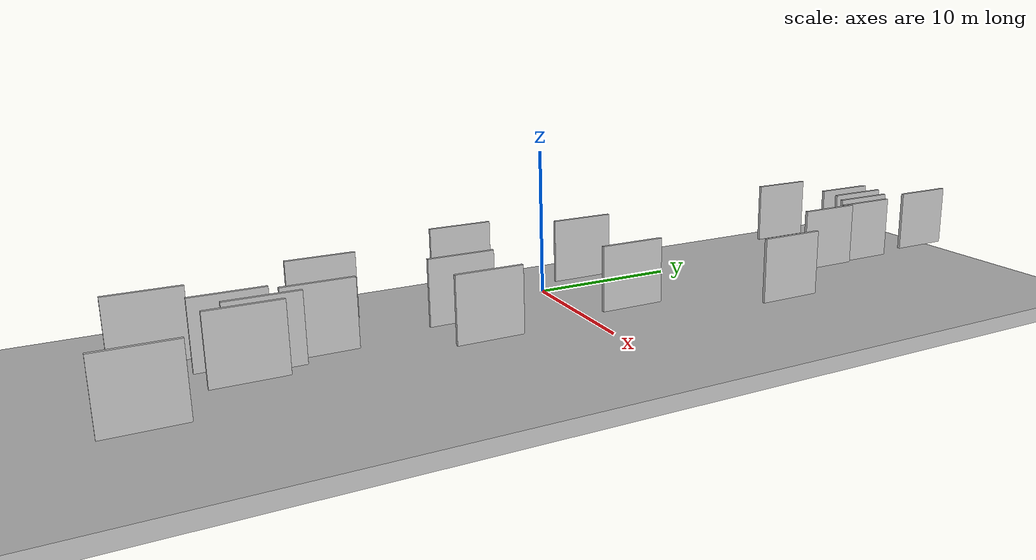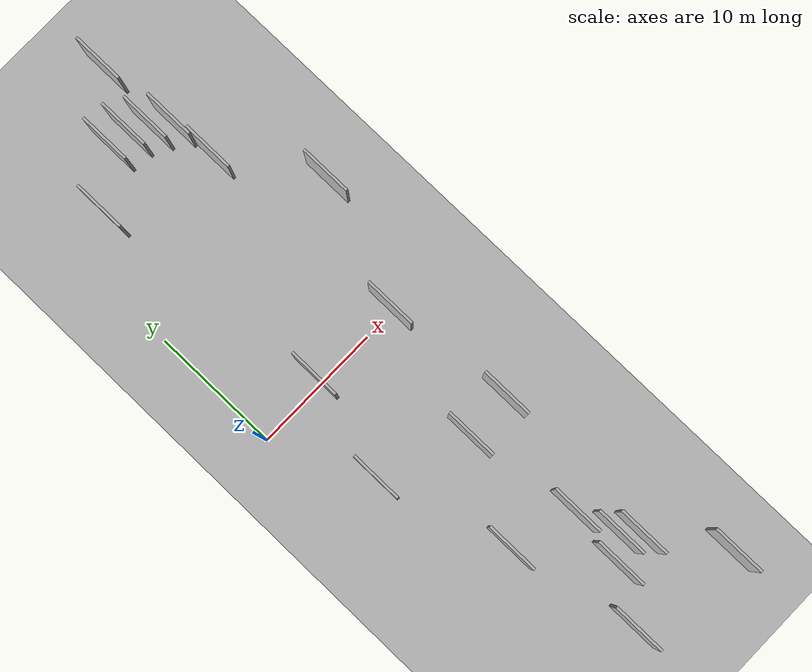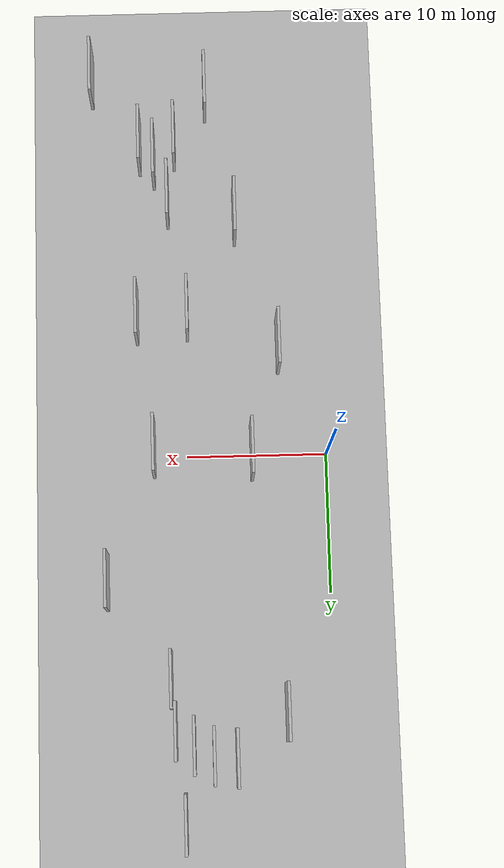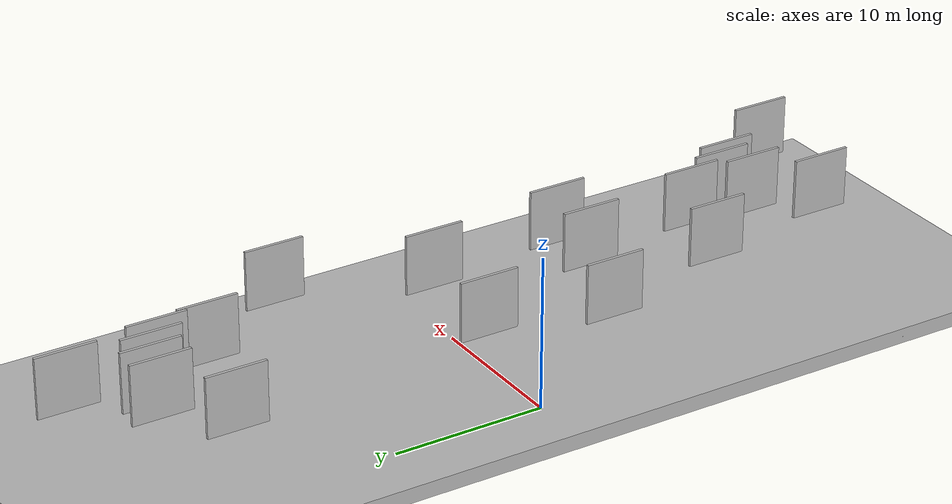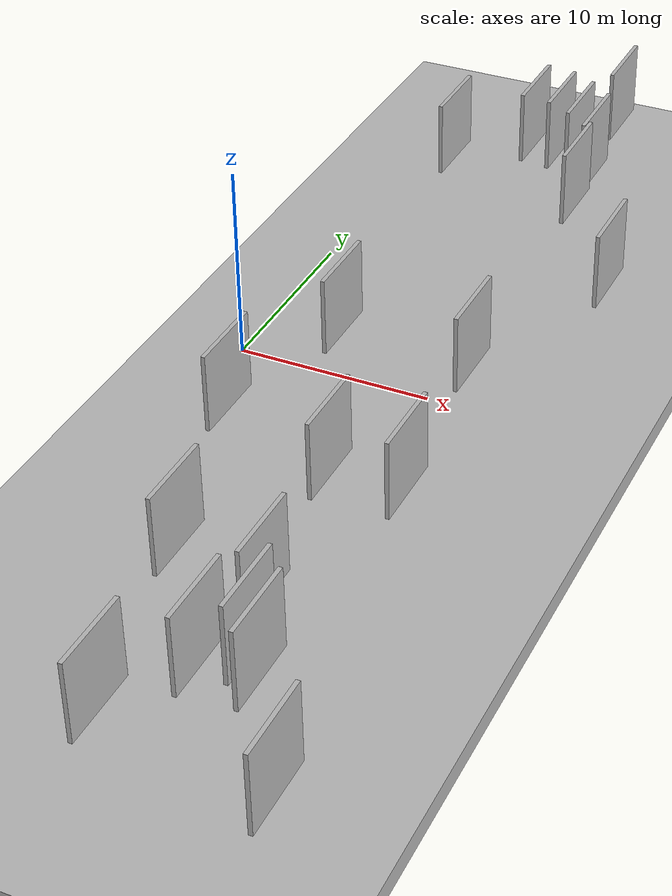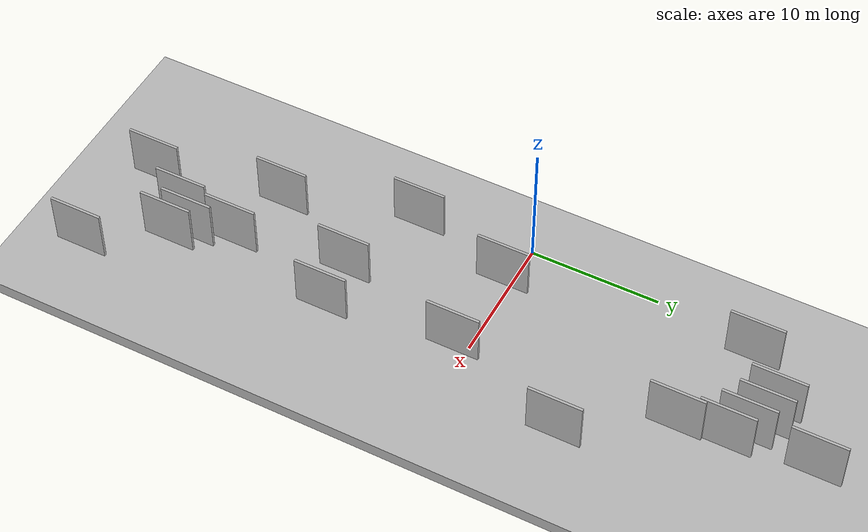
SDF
<?xml version="1.0" encoding="utf-8"?>

<sdf version="1.6">

   <world name="default">

      <gui fullscreen="0">

         <camera name="user_camera">

            <pose>-15 0 4.57585 0 0 0</pose>

            <view_controller>orbit</view_controller>

         </camera>

      </gui>

      <scene>

         <sky>

           <clouds>

             <speed>12</speed>

           </clouds>

         </sky>

         <ambient>0.4 0.4 0.4 1</ambient>

         <background>0.7 0.7 0.7 1</background>

         <shadows>1</shadows>

      </scene>

      <gravity>0 0 -9.8066</gravity>

      <magnetic_field>6e-06 2.3e-05 -4.2e-05</magnetic_field>

      <physics default="0" name="default_physics" type="ode">

         <ode>

            <solver>

               <type>quick</type>

               <iters>10</iters>

               <sor>1.0</sor>

               <use_dynamic_moi_rescaling>0</use_dynamic_moi_rescaling>

            </solver>

            <constraints>

               <cfm>0</cfm>

               <erp>0.2</erp>

               <contact_max_correcting_vel>100</contact_max_correcting_vel>

               <contact_surface_layer>0.001</contact_surface_layer>

            </constraints>

         </ode>

         <max_step_size>0.004</max_step_size>

         <real_time_factor>1</real_time_factor>

         <real_time_update_rate>250</real_time_update_rate>

      </physics>

      <light name="sun" type="directional">

         <cast_shadows>1</cast_shadows>

         <pose>0 0 10 0 0 0</pose>

         <diffuse>0.8 0.8 0.8 1</diffuse>

         <specular>0.2 0.2 0.2 1</specular>

         <attenuation>

            <range>1000</range>

            <constant>0.9</constant>

            <linear>0.01</linear>

            <quadratic>0.001</quadratic>

         </attenuation>

         <direction>-0.5 0.1 -0.9</direction>

      </light>

      <include>

         <name>ground_plane_1</name>

         <uri>model://HANNAS_ground_plane</uri>

         <pose>0 0 0  0 0 0</pose>

      </include>

      <include>

         <name>ground_plane_2</name>

         <uri>model://HANNAS_ground_plane</uri>

         <pose>100 0 0  0 0 0</pose>

      </include>

      <model name="HANNAS_wall_1">

         <static>1</static>

         <pose frame="">8.6026 21.1452 2.5 0.000000 0.000000 1.570796</pose>

         <link name="link">

            <pose frame="">0 0 2.00 0 0 0</pose>

            <collision name="collision">

               <geometry>

                  <box>

                     <size>4.00 0.2 4.00</size>

                  </box>

               </geometry>

               <max_contacts>10</max_contacts>

               <surface>

                  <contact>

                     <ode/>

                  </contact>

                  <bounce/>

                  <friction>

                     <torsional>

                        <ode/>

                     </torsional>

                     <ode/>

                  </friction>

               </surface>

            </collision>

            <visual name="visual">

               <cast_shadows>0</cast_shadows>

               <geometry>

                  <box>

                     <size>4.00 0.2 4.00</size>

                  </box>

               </geometry>

               <material>

                  <script>

                     <uri>model://HANNAS_wall/materials/scripts</uri>

                     <uri>model://HANNAS_wall/materials/textures</uri>

                     <name>vrc/HANNAS_wall</name>

                  </script>

               </material>

            </visual>

            <self_collide>0</self_collide>

            <enable_wind>0</enable_wind>

            <kinematic>0</kinematic>

         </link>

      </model>

      <model name="HANNAS_wall_2">

         <static>1</static>

         <pose frame="">16.3442 -27.7545 2.5 0.000000 0.000000 1.570796</pose>

         <link name="link">

            <pose frame="">0 0 2.00 0 0 0</pose>

            <collision name="collision">

               <geometry>

                  <box>

                     <size>4.00 0.2 4.00</size>

                  </box>

               </geometry>

               <max_contacts>10</max_contacts>

               <surface>

                  <contact>

                     <ode/>

                  </contact>

                  <bounce/>

                  <friction>

                     <torsional>

                        <ode/>

                     </torsional>

                     <ode/>

                  </friction>

               </surface>

            </collision>

            <visual name="visual">

               <cast_shadows>0</cast_shadows>

               <geometry>

                  <box>

                     <size>4.00 0.2 4.00</size>

                  </box>

               </geometry>

               <material>

                  <script>

                     <uri>model://HANNAS_wall/materials/scripts</uri>

                     <uri>model://HANNAS_wall/materials/textures</uri>

                     <name>vrc/HANNAS_wall</name>

                  </script>

               </material>

            </visual>

            <self_collide>0</self_collide>

            <enable_wind>0</enable_wind>

            <kinematic>0</kinematic>

         </link>

      </model>

      <model name="HANNAS_wall_3">

         <static>1</static>

         <pose frame="">11.4200 15.9923 2.5 0.000000 0.000000 1.570796</pose>

         <link name="link">

            <pose frame="">0 0 2.00 0 0 0</pose>

            <collision name="collision">

               <geometry>

                  <box>

                     <size>4.00 0.2 4.00</size>

                  </box>

               </geometry>

               <max_contacts>10</max_contacts>

               <surface>

                  <contact>

                     <ode/>

                  </contact>

                  <bounce/>

                  <friction>

                     <torsional>

                        <ode/>

                     </torsional>

                     <ode/>

                  </friction>

               </surface>

            </collision>

            <visual name="visual">

               <cast_shadows>0</cast_shadows>

               <geometry>

                  <box>

                     <size>4.00 0.2 4.00</size>

                  </box>

               </geometry>

               <material>

                  <script>

                     <uri>model://HANNAS_wall/materials/scripts</uri>

                     <uri>model://HANNAS_wall/materials/textures</uri>

                     <name>vrc/HANNAS_wall</name>

                  </script>

               </material>

            </visual>

            <self_collide>0</self_collide>

            <enable_wind>0</enable_wind>

            <kinematic>0</kinematic>

         </link>

      </model>

      <model name="HANNAS_wall_4">

         <static>1</static>

         <pose frame="">11.9391 -21.4472 2.5 0.000000 0.000000 1.570796</pose>

         <link name="link">

            <pose frame="">0 0 2.00 0 0 0</pose>

            <collision name="collision">

               <geometry>

                  <box>

                     <size>4.00 0.2 4.00</size>

                  </box>

               </geometry>

               <max_contacts>10</max_contacts>

               <surface>

                  <contact>

                     <ode/>

                  </contact>

                  <bounce/>

                  <friction>

                     <torsional>

                        <ode/>

                     </torsional>

                     <ode/>

                  </friction>

               </surface>

            </collision>

            <visual name="visual">

               <cast_shadows>0</cast_shadows>

               <geometry>

                  <box>

                     <size>4.00 0.2 4.00</size>

                  </box>

               </geometry>

               <material>

                  <script>

                     <uri>model://HANNAS_wall/materials/scripts</uri>

                     <uri>model://HANNAS_wall/materials/textures</uri>

                     <name>vrc/HANNAS_wall</name>

                  </script>

               </material>

            </visual>

            <self_collide>0</self_collide>

            <enable_wind>0</enable_wind>

            <kinematic>0</kinematic>

         </link>

      </model>

      <model name="HANNAS_wall_5">

         <static>1</static>

         <pose frame="">12.9472 -22.5260 2.5 0.000000 0.000000 1.570796</pose>

         <link name="link">

            <pose frame="">0 0 2.00 0 0 0</pose>

            <collision name="collision">

               <geometry>

                  <box>

                     <size>4.00 0.2 4.00</size>

                  </box>

               </geometry>

               <max_contacts>10</max_contacts>

               <surface>

                  <contact>

                     <ode/>

                  </contact>

                  <bounce/>

                  <friction>

                     <torsional>

                        <ode/>

                     </torsional>

                     <ode/>

                  </friction>

               </surface>

            </collision>

            <visual name="visual">

               <cast_shadows>0</cast_shadows>

               <geometry>

                  <box>

                     <size>4.00 0.2 4.00</size>

                  </box>

               </geometry>

               <material>

                  <script>

                     <uri>model://HANNAS_wall/materials/scripts</uri>

                     <uri>model://HANNAS_wall/materials/textures</uri>

                     <name>vrc/HANNAS_wall</name>

                  </script>

               </material>

            </visual>

            <self_collide>0</self_collide>

            <enable_wind>0</enable_wind>

            <kinematic>0</kinematic>

         </link>

      </model>

      <model name="HANNAS_wall_6">

         <static>1</static>

         <pose frame="">11.1867 19.4636 2.5 0.000000 0.000000 1.570796</pose>

         <link name="link">

            <pose frame="">0 0 2.00 0 0 0</pose>

            <collision name="collision">

               <geometry>

                  <box>

                     <size>4.00 0.2 4.00</size>

                  </box>

               </geometry>

               <max_contacts>10</max_contacts>

               <surface>

                  <contact>

                     <ode/>

                  </contact>

                  <bounce/>

                  <friction>

                     <torsional>

                        <ode/>

                     </torsional>

                     <ode/>

                  </friction>

               </surface>

            </collision>

            <visual name="visual">

               <cast_shadows>0</cast_shadows>

               <geometry>

                  <box>

                     <size>4.00 0.2 4.00</size>

                  </box>

               </geometry>

               <material>

                  <script>

                     <uri>model://HANNAS_wall/materials/scripts</uri>

                     <uri>model://HANNAS_wall/materials/textures</uri>

                     <name>vrc/HANNAS_wall</name>

                  </script>

               </material>

            </visual>

            <self_collide>0</self_collide>

            <enable_wind>0</enable_wind>

            <kinematic>0</kinematic>

         </link>

      </model>

      <model name="HANNAS_wall_7">

         <static>1</static>

         <pose frame="">6.2302 -17.0247 2.5 0.000000 0.000000 1.570796</pose>

         <link name="link">

            <pose frame="">0 0 2.00 0 0 0</pose>

            <collision name="collision">

               <geometry>

                  <box>

                     <size>4.00 0.2 4.00</size>

                  </box>

               </geometry>

               <max_contacts>10</max_contacts>

               <surface>

                  <contact>

                     <ode/>

                  </contact>

                  <bounce/>

                  <friction>

                     <torsional>

                        <ode/>

                     </torsional>

                     <ode/>

                  </friction>

               </surface>

            </collision>

            <visual name="visual">

               <cast_shadows>0</cast_shadows>

               <geometry>

                  <box>

                     <size>4.00 0.2 4.00</size>

                  </box>

               </geometry>

               <material>

                  <script>

                     <uri>model://HANNAS_wall/materials/scripts</uri>

                     <uri>model://HANNAS_wall/materials/textures</uri>

                     <name>vrc/HANNAS_wall</name>

                  </script>

               </material>

            </visual>

            <self_collide>0</self_collide>

            <enable_wind>0</enable_wind>

            <kinematic>0</kinematic>

         </link>

      </model>

      <model name="HANNAS_wall_8">

         <static>1</static>

         <pose frame="">3.5296 18.3426 2.5 0.000000 0.000000 1.570796</pose>

         <link name="link">

            <pose frame="">0 0 2.00 0 0 0</pose>

            <collision name="collision">

               <geometry>

                  <box>

                     <size>4.00 0.2 4.00</size>

                  </box>

               </geometry>

               <max_contacts>10</max_contacts>

               <surface>

                  <contact>

                     <ode/>

                  </contact>

                  <bounce/>

                  <friction>

                     <torsional>

                        <ode/>

                     </torsional>

                     <ode/>

                  </friction>

               </surface>

            </collision>

            <visual name="visual">

               <cast_shadows>0</cast_shadows>

               <geometry>

                  <box>

                     <size>4.00 0.2 4.00</size>

                  </box>

               </geometry>

               <material>

                  <script>

                     <uri>model://HANNAS_wall/materials/scripts</uri>

                     <uri>model://HANNAS_wall/materials/textures</uri>

                     <name>vrc/HANNAS_wall</name>

                  </script>

               </material>

            </visual>

            <self_collide>0</self_collide>

            <enable_wind>0</enable_wind>

            <kinematic>0</kinematic>

         </link>

      </model>

      <model name="HANNAS_wall_9">

         <static>1</static>

         <pose frame="">3.3957 -7.4346 2.5 0.000000 0.000000 1.570796</pose>

         <link name="link">

            <pose frame="">0 0 2.00 0 0 0</pose>

            <collision name="collision">

               <geometry>

                  <box>

                     <size>4.00 0.2 4.00</size>

                  </box>

               </geometry>

               <max_contacts>10</max_contacts>

               <surface>

                  <contact>

                     <ode/>

                  </contact>

                  <bounce/>

                  <friction>

                     <torsional>

                        <ode/>

                     </torsional>

                     <ode/>

                  </friction>

               </surface>

            </collision>

            <visual name="visual">

               <cast_shadows>0</cast_shadows>

               <geometry>

                  <box>

                     <size>4.00 0.2 4.00</size>

                  </box>

               </geometry>

               <material>

                  <script>

                     <uri>model://HANNAS_wall/materials/scripts</uri>

                     <uri>model://HANNAS_wall/materials/textures</uri>

                     <name>vrc/HANNAS_wall</name>

                  </script>

               </material>

            </visual>

            <self_collide>0</self_collide>

            <enable_wind>0</enable_wind>

            <kinematic>0</kinematic>

         </link>

      </model>

      <model name="HANNAS_wall_10">

         <static>1</static>

         <pose frame="">5.4474 0.2281 2.5 0.000000 0.000000 1.570796</pose>

         <link name="link">

            <pose frame="">0 0 2.00 0 0 0</pose>

            <collision name="collision">

               <geometry>

                  <box>

                     <size>4.00 0.2 4.00</size>

                  </box>

               </geometry>

               <max_contacts>10</max_contacts>

               <surface>

                  <contact>

                     <ode/>

                  </contact>

                  <bounce/>

                  <friction>

                     <torsional>

                        <ode/>

                     </torsional>

                     <ode/>

                  </friction>

               </surface>

            </collision>

            <visual name="visual">

               <cast_shadows>0</cast_shadows>

               <geometry>

                  <box>

                     <size>4.00 0.2 4.00</size>

                  </box>

               </geometry>

               <material>

                  <script>

                     <uri>model://HANNAS_wall/materials/scripts</uri>

                     <uri>model://HANNAS_wall/materials/textures</uri>

                     <name>vrc/HANNAS_wall</name>

                  </script>

               </material>

            </visual>

            <self_collide>0</self_collide>

            <enable_wind>0</enable_wind>

            <kinematic>0</kinematic>

         </link>

      </model>

      <model name="HANNAS_wall_11">

         <static>1</static>

         <pose frame="">9.9438 20.4334 2.5 0.000000 0.000000 1.570796</pose>

         <link name="link">

            <pose frame="">0 0 2.00 0 0 0</pose>

            <collision name="collision">

               <geometry>

                  <box>

                     <size>4.00 0.2 4.00</size>

                  </box>

               </geometry>

               <max_contacts>10</max_contacts>

               <surface>

                  <contact>

                     <ode/>

                  </contact>

                  <bounce/>

                  <friction>

                     <torsional>

                        <ode/>

                     </torsional>

                     <ode/>

                  </friction>

               </surface>

            </collision>

            <visual name="visual">

               <cast_shadows>0</cast_shadows>

               <geometry>

                  <box>

                     <size>4.00 0.2 4.00</size>

                  </box>

               </geometry>

               <material>

                  <script>

                     <uri>model://HANNAS_wall/materials/scripts</uri>

                     <uri>model://HANNAS_wall/materials/textures</uri>

                     <name>vrc/HANNAS_wall</name>

                  </script>

               </material>

            </visual>

            <self_collide>0</self_collide>

            <enable_wind>0</enable_wind>

            <kinematic>0</kinematic>

         </link>

      </model>

      <model name="HANNAS_wall_12">

         <static>1</static>

         <pose frame="">10.9960 -18.4231 2.5 0.000000 0.000000 1.570796</pose>

         <link name="link">

            <pose frame="">0 0 2.00 0 0 0</pose>

            <collision name="collision">

               <geometry>

                  <box>

                     <size>4.00 0.2 4.00</size>

                  </box>

               </geometry>

               <max_contacts>10</max_contacts>

               <surface>

                  <contact>

                     <ode/>

                  </contact>

                  <bounce/>

                  <friction>

                     <torsional>

                        <ode/>

                     </torsional>

                     <ode/>

                  </friction>

               </surface>

            </collision>

            <visual name="visual">

               <cast_shadows>0</cast_shadows>

               <geometry>

                  <box>

                     <size>4.00 0.2 4.00</size>

                  </box>

               </geometry>

               <material>

                  <script>

                     <uri>model://HANNAS_wall/materials/scripts</uri>

                     <uri>model://HANNAS_wall/materials/textures</uri>

                     <name>vrc/HANNAS_wall</name>

                  </script>

               </material>

            </visual>

            <self_collide>0</self_collide>

            <enable_wind>0</enable_wind>

            <kinematic>0</kinematic>

         </link>

      </model>

      <model name="HANNAS_wall_13">

         <static>1</static>

         <pose frame="">15.7169 9.1637 2.5 0.000000 0.000000 1.570796</pose>

         <link name="link">

            <pose frame="">0 0 2.00 0 0 0</pose>

            <collision name="collision">

               <geometry>

                  <box>

                     <size>4.00 0.2 4.00</size>

                  </box>

               </geometry>

               <max_contacts>10</max_contacts>

               <surface>

                  <contact>

                     <ode/>

                  </contact>

                  <bounce/>

                  <friction>

                     <torsional>

                        <ode/>

                     </torsional>

                     <ode/>

                  </friction>

               </surface>

            </collision>

            <visual name="visual">

               <cast_shadows>0</cast_shadows>

               <geometry>

                  <box>

                     <size>4.00 0.2 4.00</size>

                  </box>

               </geometry>

               <material>

                  <script>

                     <uri>model://HANNAS_wall/materials/scripts</uri>

                     <uri>model://HANNAS_wall/materials/textures</uri>

                     <name>vrc/HANNAS_wall</name>

                  </script>

               </material>

            </visual>

            <self_collide>0</self_collide>

            <enable_wind>0</enable_wind>

            <kinematic>0</kinematic>

         </link>

      </model>

      <model name="HANNAS_wall_14">

         <static>1</static>

         <pose frame="">7.0278 21.3340 2.5 0.000000 0.000000 1.570796</pose>

         <link name="link">

            <pose frame="">0 0 2.00 0 0 0</pose>

            <collision name="collision">

               <geometry>

                  <box>

                     <size>4.00 0.2 4.00</size>

                  </box>

               </geometry>

               <max_contacts>10</max_contacts>

               <surface>

                  <contact>

                     <ode/>

                  </contact>

                  <bounce/>

                  <friction>

                     <torsional>

                        <ode/>

                     </torsional>

                     <ode/>

                  </friction>

               </surface>

            </collision>

            <visual name="visual">

               <cast_shadows>0</cast_shadows>

               <geometry>

                  <box>

                     <size>4.00 0.2 4.00</size>

                  </box>

               </geometry>

               <material>

                  <script>

                     <uri>model://HANNAS_wall/materials/scripts</uri>

                     <uri>model://HANNAS_wall/materials/textures</uri>

                     <name>vrc/HANNAS_wall</name>

                  </script>

               </material>

            </visual>

            <self_collide>0</self_collide>

            <enable_wind>0</enable_wind>

            <kinematic>0</kinematic>

         </link>

      </model>

      <model name="HANNAS_wall_15">

         <static>1</static>

         <pose frame="">10.4401 -22.8148 2.5 0.000000 0.000000 1.570796</pose>

         <link name="link">

            <pose frame="">0 0 2.00 0 0 0</pose>

            <collision name="collision">

               <geometry>

                  <box>

                     <size>4.00 0.2 4.00</size>

                  </box>

               </geometry>

               <max_contacts>10</max_contacts>

               <surface>

                  <contact>

                     <ode/>

                  </contact>

                  <bounce/>

                  <friction>

                     <torsional>

                        <ode/>

                     </torsional>

                     <ode/>

                  </friction>

               </surface>

            </collision>

            <visual name="visual">

               <cast_shadows>0</cast_shadows>

               <geometry>

                  <box>

                     <size>4.00 0.2 4.00</size>

                  </box>

               </geometry>

               <material>

                  <script>

                     <uri>model://HANNAS_wall/materials/scripts</uri>

                     <uri>model://HANNAS_wall/materials/textures</uri>

                     <name>vrc/HANNAS_wall</name>

                  </script>

               </material>

            </visual>

            <self_collide>0</self_collide>

            <enable_wind>0</enable_wind>

            <kinematic>0</kinematic>

         </link>

      </model>

      <model name="HANNAS_wall_16">

         <static>1</static>

         <pose frame="">9.7696 -9.9794 2.5 0.000000 0.000000 1.570796</pose>

         <link name="link">

            <pose frame="">0 0 2.00 0 0 0</pose>

            <collision name="collision">

               <geometry>

                  <box>

                     <size>4.00 0.2 4.00</size>

                  </box>

               </geometry>

               <max_contacts>10</max_contacts>

               <surface>

                  <contact>

                     <ode/>

                  </contact>

                  <bounce/>

                  <friction>

                     <torsional>

                        <ode/>

                     </torsional>

                     <ode/>

                  </friction>

               </surface>

            </collision>

            <visual name="visual">

               <cast_shadows>0</cast_shadows>

               <geometry>

                  <box>

                     <size>4.00 0.2 4.00</size>

                  </box>

               </geometry>

               <material>

                  <script>

                     <uri>model://HANNAS_wall/materials/scripts</uri>

                     <uri>model://HANNAS_wall/materials/textures</uri>

                     <name>vrc/HANNAS_wall</name>

                  </script>

               </material>

            </visual>

            <self_collide>0</self_collide>

            <enable_wind>0</enable_wind>

            <kinematic>0</kinematic>

         </link>

      </model>

      <model name="HANNAS_wall_17">

         <static>1</static>

         <pose frame="">10.6031 25.5754 2.5 0.000000 0.000000 1.570796</pose>

         <link name="link">

            <pose frame="">0 0 2.00 0 0 0</pose>

            <collision name="collision">

               <geometry>

                  <box>

                     <size>4.00 0.2 4.00</size>

                  </box>

               </geometry>

               <max_contacts>10</max_contacts>

               <surface>

                  <contact>

                     <ode/>

                  </contact>

                  <bounce/>

                  <friction>

                     <torsional>

                        <ode/>

                     </torsional>

                     <ode/>

                  </friction>

               </surface>

            </collision>

            <visual name="visual">

               <cast_shadows>0</cast_shadows>

               <geometry>

                  <box>

                     <size>4.00 0.2 4.00</size>

                  </box>

               </geometry>

               <material>

                  <script>

                     <uri>model://HANNAS_wall/materials/scripts</uri>

                     <uri>model://HANNAS_wall/materials/textures</uri>

                     <name>vrc/HANNAS_wall</name>

                  </script>

               </material>

            </visual>

            <self_collide>0</self_collide>

            <enable_wind>0</enable_wind>

            <kinematic>0</kinematic>

         </link>

      </model>

      <model name="HANNAS_wall_18">

         <static>1</static>

         <pose frame="">8.1453 -26.5182 2.5 0.000000 0.000000 1.570796</pose>

         <link name="link">

            <pose frame="">0 0 2.00 0 0 0</pose>

            <collision name="collision">

               <geometry>

                  <box>

                     <size>4.00 0.2 4.00</size>

                  </box>

               </geometry>

               <max_contacts>10</max_contacts>

               <surface>

                  <contact>

                     <ode/>

                  </contact>

                  <bounce/>

                  <friction>

                     <torsional>

                        <ode/>

                     </torsional>

                     <ode/>

                  </friction>

               </surface>

            </collision>

            <visual name="visual">

               <cast_shadows>0</cast_shadows>

               <geometry>

                  <box>

                     <size>4.00 0.2 4.00</size>

                  </box>

               </geometry>

               <material>

                  <script>

                     <uri>model://HANNAS_wall/materials/scripts</uri>

                     <uri>model://HANNAS_wall/materials/textures</uri>

                     <name>vrc/HANNAS_wall</name>

                  </script>

               </material>

            </visual>

            <self_collide>0</self_collide>

            <enable_wind>0</enable_wind>

            <kinematic>0</kinematic>

         </link>

      </model>

      <model name="HANNAS_wall_19">

         <static>1</static>

         <pose frame="">13.3531 -9.8064 2.5 0.000000 0.000000 1.570796</pose>

         <link name="link">

            <pose frame="">0 0 2.00 0 0 0</pose>

            <collision name="collision">

               <geometry>

                  <box>

                     <size>4.00 0.2 4.00</size>

                  </box>

               </geometry>

               <max_contacts>10</max_contacts>

               <surface>

                  <contact>

                     <ode/>

                  </contact>

                  <bounce/>

                  <friction>

                     <torsional>

                        <ode/>

                     </torsional>

                     <ode/>

                  </friction>

               </surface>

            </collision>

            <visual name="visual">

               <cast_shadows>0</cast_shadows>

               <geometry>

                  <box>

                     <size>4.00 0.2 4.00</size>

                  </box>

               </geometry>

               <material>

                  <script>

                     <uri>model://HANNAS_wall/materials/scripts</uri>

                     <uri>model://HANNAS_wall/materials/textures</uri>

                     <name>vrc/HANNAS_wall</name>

                  </script>

               </material>

            </visual>

            <self_collide>0</self_collide>

            <enable_wind>0</enable_wind>

            <kinematic>0</kinematic>

         </link>

      </model>

      <model name="HANNAS_wall_20">

         <static>1</static>

         <pose frame="">12.3140 -0.1206 2.5 0.000000 0.000000 1.570796</pose>

         <link name="link">

            <pose frame="">0 0 2.00 0 0 0</pose>

            <collision name="collision">

               <geometry>

                  <box>

                     <size>4.00 0.2 4.00</size>

                  </box>

               </geometry>

               <max_contacts>10</max_contacts>

               <surface>

                  <contact>

                     <ode/>

                  </contact>

                  <bounce/>

                  <friction>

                     <torsional>

                        <ode/>

                     </torsional>

                     <ode/>

                  </friction>

               </surface>

            </collision>

            <visual name="visual">

               <cast_shadows>0</cast_shadows>

               <geometry>

                  <box>

                     <size>4.00 0.2 4.00</size>

                  </box>

               </geometry>

               <material>

                  <script>

                     <uri>model://HANNAS_wall/materials/scripts</uri>

                     <uri>model://HANNAS_wall/materials/textures</uri>

                     <name>vrc/HANNAS_wall</name>

                  </script>

               </material>

            </visual>

            <self_collide>0</self_collide>

            <enable_wind>0</enable_wind>

            <kinematic>0</kinematic>

         </link>

      </model>

   </world>

</sdf>

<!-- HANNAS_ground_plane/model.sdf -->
<sdf version="1.4">
<model name="HANNAS_ground_plane">
  <static>true</static>
    <link name="link">
      <collision name="collision">
        <geometry>
          <plane>
            <normal>0 0 1</normal>
            <size>1000 1000</size>
          </plane>
        </geometry>
        <surface>
          <friction>
            <ode>
              <mu>100</mu>
              <mu2>50</mu2>
            </ode>
          </friction>
        </surface>
      </collision>
      <visual name="visual">
        <cast_shadows>false</cast_shadows>
        <geometry>
          <plane>
            <normal>0 0 1</normal>
            <size>1000 1000</size>
          </plane>
        </geometry>
        <material>
          <script>
            <uri>model://HANNAS_ground_plane/materials/scripts/HANNAS_ground_plane.material</uri>
	    <uri>model://HANNAS_ground_plane/materials/textures</uri>
            <name>HANNASGroundPlane/Image</name>
          </script>
        </material>
      </visual>
    </link>
  </model>
</sdf>
